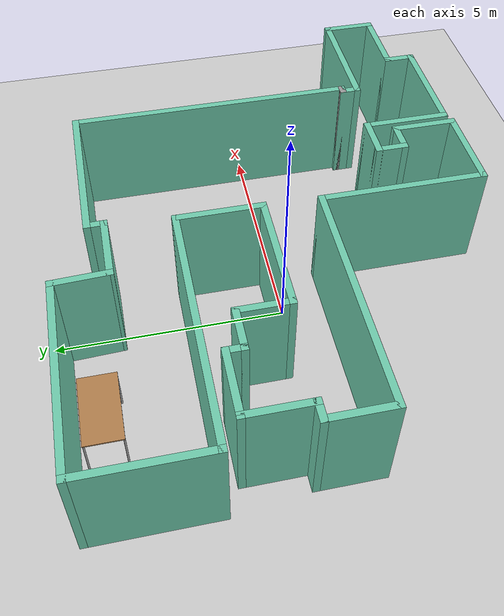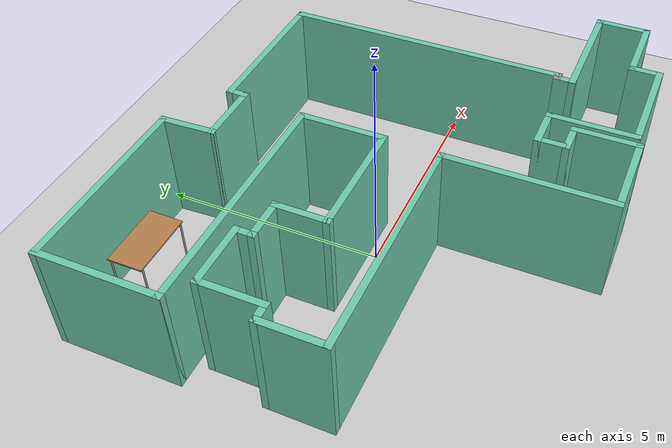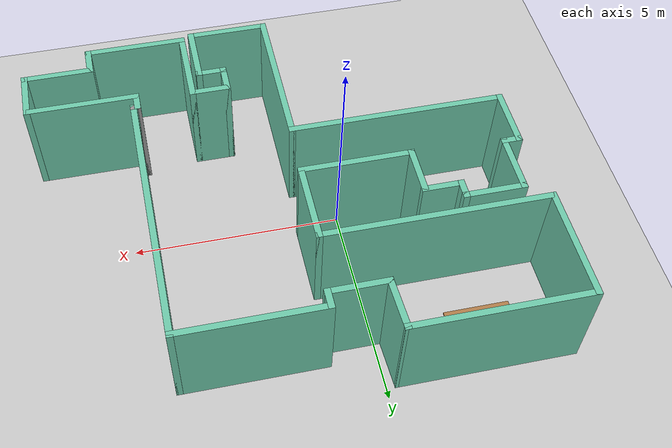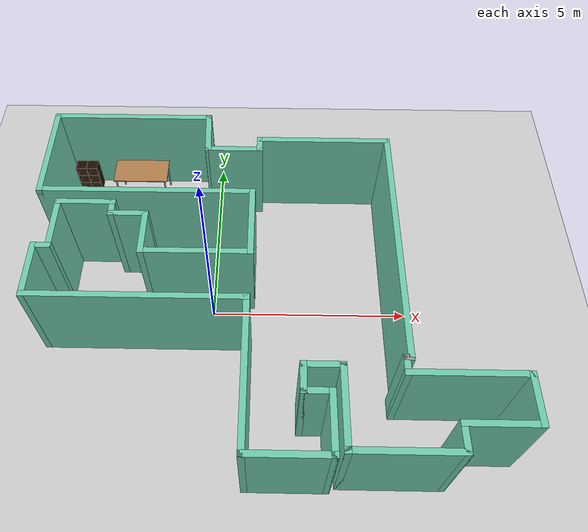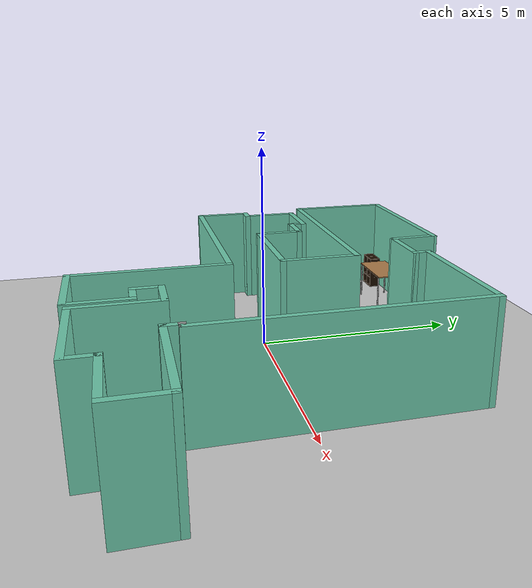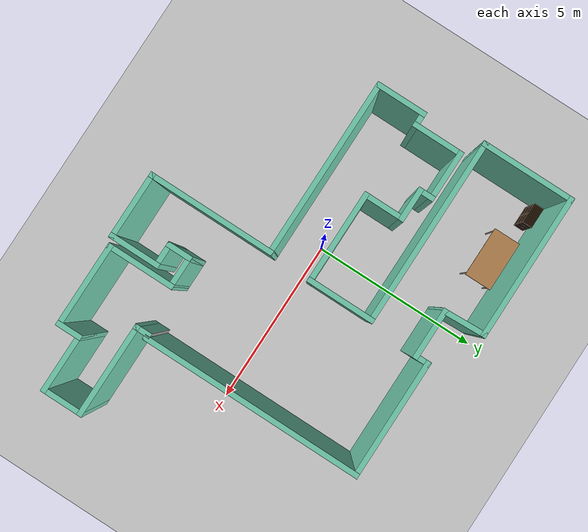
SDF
<sdf version="1.7">
 <world name="default">
  <light name="sun" type="directional">
   <pose>0 0 10 0 -0 0</pose>
   <diffuse>0.8 0.8 0.8 1</diffuse>
   <specular>0.2 0.2 0.2 1</specular>
   <attenuation>
    <range>1000</range>
    <constant>0.9</constant>
    <linear>0.01</linear>
    <quadratic>0.001</quadratic>
   </attenuation>
   <direction>-0.5 0.1 -0.9</direction>
   <spot><inner_angle>0</inner_angle><outer_angle>0</outer_angle><falloff>0</falloff></spot>
  </light>
  <model name="ground_plane">
   <static>1</static>
   <link name="link">
    <collision name="collision">
     <geometry><plane><normal>0 0 1</normal><size>100 100</size></plane></geometry>
     <surface>
      <contact><collide_bitmask>65535</collide_bitmask></contact>
      <friction><ode><mu>100</mu><mu2>50</mu2></ode></friction>
     </surface>
    </collision>
    <visual name="visual">
     <cast_shadows>0</cast_shadows>
     <geometry><plane><normal>0 0 1</normal><size>100 100</size></plane></geometry>
     <material>
      <script><uri>file://media/materials/scripts/gazebo.material</uri><name>Gazebo/Grey</name></script>
     </material>
    </visual>
   </link>
  </model>
  <gravity>0 0 -9.8</gravity>
  <magnetic_field>6e-06 2.3e-05 -4.2e-05</magnetic_field>
  <atmosphere type="adiabatic"/>
  <physics name="default_physics" default="0" type="ode">
   <max_step_size>0.001</max_step_size>
   <real_time_factor>1</real_time_factor>
   <real_time_update_rate>1000</real_time_update_rate>
  </physics>
  <scene><ambient>0.4 0.4 0.4 1</ambient><background>0.7 0.7 0.7 1</background><shadows>1</shadows></scene>
  <audio><device>default</device></audio>
  <spherical_coordinates>
   <surface_model>EARTH_WGS84</surface_model>
   <latitude_deg>0</latitude_deg>
   <longitude_deg>0</longitude_deg>
   <elevation>0</elevation>
   <heading_deg>0</heading_deg>
  </spherical_coordinates>
  <model name="map_64">
   <pose>1.31181 0.05641 0 0 -0 0</pose>
   <link name="Wall_0">
    <collision name="Wall_0_Collision">
     <geometry><box><size>4.25 0.15 2.5</size></box></geometry>
     <pose>0 0 1.25 0 -0 0</pose>
    </collision>
    <visual name="Wall_0_Visual">
     <pose>0 0 1.25 0 -0 0</pose>
     <geometry><box><size>4.25 0.15 2.5</size></box></geometry>
     <material>
      <script><uri>file://media/materials/scripts/gazebo.material</uri><name>Gazebo/Grey</name></script>
      <ambient>0.435294 0.796078 0.67451 1</ambient>
     </material>
     <meta><layer>0</layer></meta>
    </visual>
    <pose>-3.625 4.64841 0 0 -0 3.14159</pose>
   </link>
   <link name="Wall_1">
    <collision name="Wall_1_Collision">
     <geometry><box><size>2.75 0.15 2.5</size></box></geometry>
     <pose>0 0 1.25 0 -0 0</pose>
    </collision>
    <visual name="Wall_1_Visual">
     <pose>0 0 1.25 0 -0 0</pose>
     <geometry><box><size>2.75 0.15 2.5</size></box></geometry>
     <material>
      <script><uri>file://media/materials/scripts/gazebo.material</uri><name>Gazebo/Grey</name></script>
      <ambient>0.435294 0.796078 0.67451 1</ambient>
     </material>
     <meta><layer>0</layer></meta>
    </visual>
    <pose>-5.675 3.34841 0 0 -0 -1.5708</pose>
   </link>
   <link name="Wall_10">
    <collision name="Wall_10_Collision">
     <geometry><box><size>0.5 0.15 2.5</size></box></geometry>
     <pose>0 0 1.25 0 -0 0</pose>
    </collision>
    <visual name="Wall_10_Visual">
     <pose>0 0 1.25 0 -0 0</pose>
     <geometry><box><size>0.5 0.15 2.5</size></box></geometry>
     <material>
      <script><uri>file://media/materials/scripts/gazebo.material</uri><name>Gazebo/Grey</name></script>
      <ambient>0.435294 0.796078 0.67451 1</ambient>
     </material>
     <meta><layer>0</layer></meta>
    </visual>
    <pose>-5.3 0.298406 0 0 -0 3.14159</pose>
   </link>
   <link name="Wall_11">
    <collision name="Wall_11_Collision">
     <geometry><box><size>1.5 0.15 2.5</size></box></geometry>
     <pose>0 0 1.25 0 -0 0</pose>
    </collision>
    <visual name="Wall_11_Visual">
     <pose>0 0 1.25 0 -0 0</pose>
     <geometry><box><size>1.5 0.15 2.5</size></box></geometry>
     <material>
      <script><uri>file://media/materials/scripts/gazebo.material</uri><name>Gazebo/Grey</name></script>
      <ambient>0.435294 0.796078 0.67451 1</ambient>
     </material>
     <meta><layer>0</layer></meta>
    </visual>
    <pose>-5.475 -0.376594 0 0 -0 -1.5708</pose>
   </link>
   <link name="Wall_12">
    <collision name="Wall_12_Collision">
     <geometry><box><size>5.25 0.15 2.5</size></box></geometry>
     <pose>0 0 1.25 0 -0 0</pose>
    </collision>
    <visual name="Wall_12_Visual">
     <pose>0 0 1.25 0 -0 0</pose>
     <geometry><box><size>5.25 0.15 2.5</size></box></geometry>
     <material>
      <script><uri>file://media/materials/scripts/gazebo.material</uri><name>Gazebo/Grey</name></script>
      <ambient>0.435294 0.796078 0.67451 1</ambient>
     </material>
     <meta><layer>0</layer></meta>
    </visual>
    <pose>-2.925 -1.05159 0 0 -0 0</pose>
   </link>
   <link name="Wall_13">
    <collision name="Wall_13_Collision">
     <geometry><box><size>3.75 0.15 2.5</size></box></geometry>
     <pose>0 0 1.25 0 -0 0</pose>
    </collision>
    <visual name="Wall_13_Visual">
     <pose>0 0 1.25 0 -0 0</pose>
     <geometry><box><size>3.75 0.15 2.5</size></box></geometry>
     <material>
      <script><uri>file://media/materials/scripts/gazebo.material</uri><name>Gazebo/Grey</name></script>
      <ambient>0.435294 0.796078 0.67451 1</ambient>
     </material>
     <meta><layer>0</layer></meta>
    </visual>
    <pose>-0.375 -2.85159 0 0 -0 -1.5708</pose>
   </link>
   <link name="Wall_14">
    <collision name="Wall_14_Collision">
     <geometry><box><size>2 0.15 2.5</size></box></geometry>
     <pose>0 0 1.25 0 -0 0</pose>
    </collision>
    <visual name="Wall_14_Visual">
     <pose>0 0 1.25 0 -0 0</pose>
     <geometry><box><size>2 0.15 2.5</size></box></geometry>
     <material>
      <script><uri>file://media/materials/scripts/gazebo.material</uri><name>Gazebo/Grey</name></script>
      <ambient>0.435294 0.796078 0.67451 1</ambient>
     </material>
     <meta><layer>0</layer></meta>
    </visual>
    <pose>0.55 -4.65159 0 0 -0 0</pose>
   </link>
   <link name="Wall_15">
    <collision name="Wall_15_Collision">
     <geometry><box><size>1.5 0.15 2.5</size></box></geometry>
     <pose>0 0 1.25 0 -0 0</pose>
    </collision>
    <visual name="Wall_15_Visual">
     <pose>0 0 1.25 0 -0 0</pose>
     <geometry><box><size>1.5 0.15 2.5</size></box></geometry>
     <material>
      <script><uri>file://media/materials/scripts/gazebo.material</uri><name>Gazebo/Grey</name></script>
      <ambient>0.435294 0.796078 0.67451 1</ambient>
     </material>
     <meta><layer>0</layer></meta>
    </visual>
    <pose>1.475 -3.97659 0 0 -0 1.5708</pose>
   </link>
   <link name="Wall_16">
    <collision name="Wall_16_Collision">
     <geometry><box><size>0.75 0.15 2.5</size></box></geometry>
     <pose>0 0 1.25 0 -0 0</pose>
    </collision>
    <visual name="Wall_16_Visual">
     <pose>0 0 1.25 0 -0 0</pose>
     <geometry><box><size>0.75 0.15 2.5</size></box></geometry>
     <material>
      <script><uri>file://media/materials/scripts/gazebo.material</uri><name>Gazebo/Grey</name></script>
      <ambient>0.435294 0.796078 0.67451 1</ambient>
     </material>
     <meta><layer>0</layer></meta>
    </visual>
    <pose>1.175 -3.30159 0 0 -0 3.14159</pose>
   </link>
   <link name="Wall_17">
    <collision name="Wall_17_Collision">
     <geometry><box><size>0.75 0.15 2.5</size></box></geometry>
     <pose>0 0 1.25 0 -0 0</pose>
    </collision>
    <visual name="Wall_17_Visual">
     <pose>0 0 1.25 0 -0 0</pose>
     <geometry><box><size>0.75 0.15 2.5</size></box></geometry>
     <material>
      <script><uri>file://media/materials/scripts/gazebo.material</uri><name>Gazebo/Grey</name></script>
      <ambient>0.435294 0.796078 0.67451 1</ambient>
     </material>
     <meta><layer>0</layer></meta>
    </visual>
    <pose>0.875 -3.00159 0 0 -0 1.5708</pose>
   </link>
   <link name="Wall_18">
    <collision name="Wall_18_Collision">
     <geometry><box><size>1 0.15 2.5</size></box></geometry>
     <pose>0 0 1.25 0 -0 0</pose>
    </collision>
    <visual name="Wall_18_Visual">
     <pose>0 0 1.25 0 -0 0</pose>
     <geometry><box><size>1 0.15 2.5</size></box></geometry>
     <material>
      <script><uri>file://media/materials/scripts/gazebo.material</uri><name>Gazebo/Grey</name></script>
      <ambient>0.435294 0.796078 0.67451 1</ambient>
     </material>
     <meta><layer>0</layer></meta>
    </visual>
    <pose>1.3 -2.70159 0 0 -0 0</pose>
   </link>
   <link name="Wall_19">
    <collision name="Wall_19_Collision">
     <geometry><box><size>2 0.15 2.5</size></box></geometry>
     <pose>0 0 1.25 0 -0 0</pose>
    </collision>
    <visual name="Wall_19_Visual">
     <pose>0 0 1.25 0 -0 0</pose>
     <geometry><box><size>2 0.15 2.5</size></box></geometry>
     <material>
      <script><uri>file://media/materials/scripts/gazebo.material</uri><name>Gazebo/Grey</name></script>
      <ambient>0.435294 0.796078 0.67451 1</ambient>
     </material>
     <meta><layer>0</layer></meta>
    </visual>
    <pose>1.725 -3.62659 0 0 -0 -1.5708</pose>
   </link>
   <link name="Wall_2">
    <collision name="Wall_2_Collision">
     <geometry><box><size>5.5 0.15 2.5</size></box></geometry>
     <pose>0 0 1.25 0 -0 0</pose>
    </collision>
    <visual name="Wall_2_Visual">
     <pose>0 0 1.25 0 -0 0</pose>
     <geometry><box><size>5.5 0.15 2.5</size></box></geometry>
     <material>
      <script><uri>file://media/materials/scripts/gazebo.material</uri><name>Gazebo/Grey</name></script>
      <ambient>0.435294 0.796078 0.67451 1</ambient>
     </material>
     <meta><layer>0</layer></meta>
    </visual>
    <pose>-3 2.04841 0 0 -0 0</pose>
   </link>
   <link name="Wall_20">
    <collision name="Wall_20_Collision">
     <geometry><box><size>2.5 0.15 2.5</size></box></geometry>
     <pose>0 0 1.25 0 -0 0</pose>
    </collision>
    <visual name="Wall_20_Visual">
     <pose>0 0 1.25 0 -0 0</pose>
     <geometry><box><size>2.5 0.15 2.5</size></box></geometry>
     <material>
      <script><uri>file://media/materials/scripts/gazebo.material</uri><name>Gazebo/Grey</name></script>
      <ambient>0.435294 0.796078 0.67451 1</ambient>
     </material>
     <meta><layer>0</layer></meta>
    </visual>
    <pose>2.9 -4.55159 0 0 -0 0</pose>
   </link>
   <link name="Wall_21">
    <collision name="Wall_21_Collision">
     <geometry><box><size>0.75 0.15 2.5</size></box></geometry>
     <pose>0 0 1.25 0 -0 0</pose>
    </collision>
    <visual name="Wall_21_Visual">
     <pose>0 0 1.25 0 -0 0</pose>
     <geometry><box><size>0.75 0.15 2.5</size></box></geometry>
     <material>
      <script><uri>file://media/materials/scripts/gazebo.material</uri><name>Gazebo/Grey</name></script>
      <ambient>0.435294 0.796078 0.67451 1</ambient>
     </material>
     <meta><layer>0</layer></meta>
    </visual>
    <pose>4.075 -4.25159 0 0 -0 1.5708</pose>
   </link>
   <link name="Wall_22">
    <collision name="Wall_22_Collision">
     <geometry><box><size>1.75 0.15 2.5</size></box></geometry>
     <pose>0 0 1.25 0 -0 0</pose>
    </collision>
    <visual name="Wall_22_Visual">
     <pose>0 0 1.25 0 -0 0</pose>
     <geometry><box><size>1.75 0.15 2.5</size></box></geometry>
     <material>
      <script><uri>file://media/materials/scripts/gazebo.material</uri><name>Gazebo/Grey</name></script>
      <ambient>0.435294 0.796078 0.67451 1</ambient>
     </material>
     <meta><layer>0</layer></meta>
    </visual>
    <pose>4.875 -3.95159 0 0 -0 0</pose>
   </link>
   <link name="Wall_25">
    <collision name="Wall_25_Collision">
     <geometry><box><size>1.25 0.15 2.5</size></box></geometry>
     <pose>0 0 1.25 0 -0 0</pose>
    </collision>
    <visual name="Wall_25_Visual">
     <pose>0 0 1.25 0 -0 0</pose>
     <geometry><box><size>1.25 0.15 2.5</size></box></geometry>
     <material>
      <script><uri>file://media/materials/scripts/gazebo.material</uri><name>Gazebo/Grey</name></script>
      <ambient>0.435294 0.796078 0.67451 1</ambient>
     </material>
     <meta><layer>0</layer></meta>
    </visual>
    <pose>5.675 -3.40159 0 0 -0 1.5708</pose>
   </link>
   <link name="Wall_26">
    <collision name="Wall_26_Collision">
     <geometry><box><size>2.75 0.15 2.5</size></box></geometry>
     <pose>0 0 1.25 0 -0 0</pose>
    </collision>
    <visual name="Wall_26_Visual">
     <pose>0 0 1.25 0 -0 0</pose>
     <geometry><box><size>2.75 0.15 2.5</size></box></geometry>
     <material>
      <script><uri>file://media/materials/scripts/gazebo.material</uri><name>Gazebo/Grey</name></script>
      <ambient>0.435294 0.796078 0.67451 1</ambient>
     </material>
     <meta><layer>0</layer></meta>
    </visual>
    <pose>4.375 -2.85159 0 0 -0 3.14159</pose>
   </link>
   <link name="Wall_29">
    <collision name="Wall_29_Collision">
     <geometry><box><size>0.5 0.15 2.5</size></box></geometry>
     <pose>0 0 1.25 0 -0 0</pose>
    </collision>
    <visual name="Wall_29_Visual">
     <pose>0 0 1.25 0 -0 0</pose>
     <geometry><box><size>0.5 0.15 2.5</size></box></geometry>
     <material>
      <script><uri>file://media/materials/scripts/gazebo.material</uri><name>Gazebo/Grey</name></script>
      <ambient>0.435294 0.796078 0.67451 1</ambient>
     </material>
     <meta><layer>0</layer></meta>
    </visual>
    <pose>3.075 -2.67659 0 0 -0 1.5708</pose>
   </link>
   <link name="Wall_3">
    <collision name="Wall_3_Collision">
     <geometry><box><size>2 0.15 2.5</size></box></geometry>
     <pose>0 0 1.25 0 -0 0</pose>
    </collision>
    <visual name="Wall_3_Visual">
     <pose>0 0 1.25 0 -0 0</pose>
     <geometry><box><size>2 0.15 2.5</size></box></geometry>
     <material>
      <script><uri>file://media/materials/scripts/gazebo.material</uri><name>Gazebo/Grey</name></script>
      <ambient>0.435294 0.796078 0.67451 1</ambient>
     </material>
     <meta><layer>0</layer></meta>
    </visual>
    <pose>-0.325 1.12341 0 0 -0 -1.5708</pose>
   </link>
   <link name="Wall_30">
    <collision name="Wall_30_Collision">
     <geometry><box><size>0.25 0.15 2.5</size></box></geometry>
     <pose>0 0 1.25 0 -0 0</pose>
    </collision>
    <visual name="Wall_30_Visual">
     <pose>0 0 1.25 0 -0 0</pose>
     <geometry><box><size>0.25 0.15 2.5</size></box></geometry>
     <material>
      <script><uri>file://media/materials/scripts/gazebo.material</uri><name>Gazebo/Grey</name></script>
      <ambient>1 1 1 1</ambient>
     </material>
     <meta><layer>0</layer></meta>
    </visual>
    <pose>3.125 -2.50159 0 0 -0 0</pose>
   </link>
   <link name="Wall_31">
    <collision name="Wall_31_Collision">
     <geometry><box><size>6.5 0.15 2.5</size></box></geometry>
     <pose>0 0 1.25 0 -0 0</pose>
    </collision>
    <visual name="Wall_31_Visual">
     <pose>0 0 1.25 0 -0 0</pose>
     <geometry><box><size>6.5 0.15 2.5</size></box></geometry>
     <material>
      <script><uri>file://media/materials/scripts/gazebo.material</uri><name>Gazebo/Grey</name></script>
      <ambient>0.435294 0.796078 0.67451 1</ambient>
     </material>
     <meta><layer>0</layer></meta>
    </visual>
    <pose>3.175 0.673406 0 0 -0 1.5708</pose>
   </link>
   <link name="Wall_32">
    <collision name="Wall_32_Collision">
     <geometry><box><size>3.5 0.15 2.5</size></box></geometry>
     <pose>0 0 1.25 0 -0 0</pose>
    </collision>
    <visual name="Wall_32_Visual">
     <pose>0 0 1.25 0 -0 0</pose>
     <geometry><box><size>3.5 0.15 2.5</size></box></geometry>
     <material>
      <script><uri>file://media/materials/scripts/gazebo.material</uri><name>Gazebo/Grey</name></script>
      <ambient>0.435294 0.796078 0.67451 1</ambient>
     </material>
     <meta><layer>0</layer></meta>
    </visual>
    <pose>1.5 3.84841 0 0 -0 3.14159</pose>
   </link>
   <link name="Wall_37">
    <collision name="Wall_37_Collision">
     <geometry><box><size>0.5 0.15 2.5</size></box></geometry>
     <pose>0 0 1.25 0 -0 0</pose>
    </collision>
    <visual name="Wall_37_Visual">
     <pose>0 0 1.25 0 -0 0</pose>
     <geometry><box><size>0.5 0.15 2.5</size></box></geometry>
     <material>
      <script><uri>file://media/materials/scripts/gazebo.material</uri><name>Gazebo/Grey</name></script>
      <ambient>0.435294 0.796078 0.67451 1</ambient>
     </material>
     <meta><layer>0</layer></meta>
    </visual>
    <pose>-0.175 3.67341 0 0 -0 -1.5708</pose>
   </link>
   <link name="Wall_38">
    <collision name="Wall_38_Collision">
     <geometry><box><size>1.5 0.15 2.5</size></box></geometry>
     <pose>0 0 1.25 0 -0 0</pose>
    </collision>
    <visual name="Wall_38_Visual">
     <pose>0 0 1.25 0 -0 0</pose>
     <geometry><box><size>1.5 0.15 2.5</size></box></geometry>
     <material>
      <script><uri>file://media/materials/scripts/gazebo.material</uri><name>Gazebo/Grey</name></script>
      <ambient>0.435294 0.796078 0.67451 1</ambient>
     </material>
     <meta><layer>0</layer></meta>
    </visual>
    <pose>-0.85 3.49841 0 0 -0 3.14159</pose>
   </link>
   <link name="Wall_39">
    <collision name="Wall_39_Collision">
     <geometry><box><size>1.30109 0.15 2.5</size></box></geometry>
     <pose>0 0 1.25 0 -0 0</pose>
    </collision>
    <visual name="Wall_39_Visual">
     <pose>0 0 1.25 0 -0 0</pose>
     <geometry><box><size>1.30109 0.15 2.5</size></box></geometry>
     <material>
      <script><uri>file://media/materials/scripts/gazebo.material</uri><name>Gazebo/Grey</name></script>
      <ambient>0.435294 0.796078 0.67451 1</ambient>
     </material>
     <meta><layer>0</layer></meta>
    </visual>
    <pose>-1.55 4.07341 0 0 -0 1.61425</pose>
   </link>
   <link name="Wall_4">
    <collision name="Wall_4_Collision">
     <geometry><box><size>2.75 0.15 2.5</size></box></geometry>
     <pose>0 0 1.25 0 -0 0</pose>
    </collision>
    <visual name="Wall_4_Visual">
     <pose>0 0 1.25 0 -0 0</pose>
     <geometry><box><size>2.75 0.15 2.5</size></box></geometry>
     <material>
      <script><uri>file://media/materials/scripts/gazebo.material</uri><name>Gazebo/Grey</name></script>
      <ambient>0.435294 0.796078 0.67451 1</ambient>
     </material>
     <meta><layer>0</layer></meta>
    </visual>
    <pose>-1.625 0.198406 0 0 -0 3.14159</pose>
   </link>
   <link name="Wall_5">
    <collision name="Wall_5_Collision">
     <geometry><box><size>1.25 0.15 2.5</size></box></geometry>
     <pose>0 0 1.25 0 -0 0</pose>
    </collision>
    <visual name="Wall_5_Visual">
     <pose>0 0 1.25 0 -0 0</pose>
     <geometry><box><size>1.25 0.15 2.5</size></box></geometry>
     <material>
      <script><uri>file://media/materials/scripts/gazebo.material</uri><name>Gazebo/Grey</name></script>
      <ambient>0.435294 0.796078 0.67451 1</ambient>
     </material>
     <meta><layer>0</layer></meta>
    </visual>
    <pose>-2.925 0.748406 0 0 -0 1.5708</pose>
   </link>
   <link name="Wall_6">
    <collision name="Wall_6_Collision">
     <geometry><box><size>1 0.15 2.5</size></box></geometry>
     <pose>0 0 1.25 0 -0 0</pose>
    </collision>
    <visual name="Wall_6_Visual">
     <pose>0 0 1.25 0 -0 0</pose>
     <geometry><box><size>1 0.15 2.5</size></box></geometry>
     <material>
      <script><uri>file://media/materials/scripts/gazebo.material</uri><name>Gazebo/Grey</name></script>
      <ambient>0.435294 0.796078 0.67451 1</ambient>
     </material>
     <meta><layer>0</layer></meta>
    </visual>
    <pose>-3.35 1.29841 0 0 -0 3.14159</pose>
   </link>
   <link name="Wall_7">
    <collision name="Wall_7_Collision">
     <geometry><box><size>0.5 0.15 2.5</size></box></geometry>
     <pose>0 0 1.25 0 -0 0</pose>
    </collision>
    <visual name="Wall_7_Visual">
     <pose>0 0 1.25 0 -0 0</pose>
     <geometry><box><size>0.5 0.15 2.5</size></box></geometry>
     <material>
      <script><uri>file://media/materials/scripts/gazebo.material</uri><name>Gazebo/Grey</name></script>
      <ambient>0.435294 0.796078 0.67451 1</ambient>
     </material>
     <meta><layer>0</layer></meta>
    </visual>
    <pose>-3.775 1.47341 0 0 -0 1.5708</pose>
   </link>
   <link name="Wall_8">
    <collision name="Wall_8_Collision">
     <geometry><box><size>1.5 0.15 2.5</size></box></geometry>
     <pose>0 0 1.25 0 -0 0</pose>
    </collision>
    <visual name="Wall_8_Visual">
     <pose>0 0 1.25 0 -0 0</pose>
     <geometry><box><size>1.5 0.15 2.5</size></box></geometry>
     <material>
      <script><uri>file://media/materials/scripts/gazebo.material</uri><name>Gazebo/Grey</name></script>
      <ambient>0.435294 0.796078 0.67451 1</ambient>
     </material>
     <meta><layer>0</layer></meta>
    </visual>
    <pose>-4.45 1.64841 0 0 -0 3.14159</pose>
   </link>
   <link name="Wall_9">
    <collision name="Wall_9_Collision">
     <geometry><box><size>1.5 0.15 2.5</size></box></geometry>
     <pose>0 0 1.25 0 -0 0</pose>
    </collision>
    <visual name="Wall_9_Visual">
     <pose>0 0 1.25 0 -0 0</pose>
     <geometry><box><size>1.5 0.15 2.5</size></box></geometry>
     <material>
      <script><uri>file://media/materials/scripts/gazebo.material</uri><name>Gazebo/Grey</name></script>
      <ambient>0.435294 0.796078 0.67451 1</ambient>
     </material>
     <meta><layer>0</layer></meta>
    </visual>
    <pose>-5.125 0.973406 0 0 -0 -1.5708</pose>
   </link>
   <static>1</static>
  </model>
  <model name="6_Cube_StorageE">
   <link name="Wall_0">
    <pose>0 0 0.01 0 -0 0</pose>
    <inertial>
     <mass>1.6201</mass>
     <inertia><ixx>0.0119</ixx><iyy>0.0631</iyy><izz>0.0513</izz><ixy>0</ixy><ixz>0</ixz><iyz>0</iyz></inertia>
    </inertial>
    <collision name="Wall_0_Collision"><geometry><box><size>0.616 0.296 0.02</size></box></geometry></collision>
    <visual name="Wall_0_Visual">
     <geometry><box><size>0.616 0.296 0.02</size></box></geometry>
     <material>
      <script><uri>file://media/materials/scripts/gazebo.material</uri><name>Gazebo/Grey</name></script>
      <ambient>0.105882 0.0509804 0 1</ambient>
     </material>
    </visual>
   </link>
   <joint name="0_2" type="fixed">
    <pose>-0.308 0 0 0 -0 0</pose>
    <parent>Wall_2</parent>
    <child>Wall_0</child>
    <axis><xyz>1 0 0</xyz><limit><lower>-1e+16</lower><upper>1e+16</upper></limit></axis>
   </joint>
   <joint name="0_12" type="fixed">
    <parent>Wall_12</parent>
    <child>Wall_0</child>
    <axis><xyz>0 0 1</xyz><limit><lower>-1e+16</lower><upper>1e+16</upper></limit></axis>
   </joint>
   <joint name="0_4" type="fixed">
    <pose>0.308 0 0 0 -0 0</pose>
    <parent>Wall_4</parent>
    <child>Wall_0</child>
    <axis><xyz>1 0 0</xyz><limit><lower>-1e+16</lower><upper>1e+16</upper></limit></axis>
   </joint>
   <link name="Wall_10">
    <pose>0 0 0.61 0 -0 0</pose>
    <inertial>
     <mass>1.6201</mass>
     <inertia><ixx>0.0119</ixx><iyy>0.0631</iyy><izz>0.0513</izz><ixy>0</ixy><ixz>0</ixz><iyz>0</iyz></inertia>
    </inertial>
    <collision name="Wall_10_Collision"><geometry><box><size>0.616 0.296 0.02</size></box></geometry></collision>
    <visual name="Wall_10_Visual">
     <geometry><box><size>0.616 0.296 0.02</size></box></geometry>
     <material>
      <script><uri>file://media/materials/scripts/gazebo.material</uri><name>Gazebo/Grey</name></script>
      <ambient>0.105882 0.0509804 0 1</ambient>
     </material>
    </visual>
   </link>
   <joint name="10_2" type="fixed">
    <pose>-0.308 0 0 0 -0 0</pose>
    <parent>Wall_2</parent>
    <child>Wall_10</child>
    <axis><xyz>1 0 0</xyz><limit><lower>-1e+16</lower><upper>1e+16</upper></limit></axis>
   </joint>
   <joint name="10_12" type="fixed">
    <parent>Wall_12</parent>
    <child>Wall_10</child>
    <axis><xyz>0 0 1</xyz><limit><lower>-1e+16</lower><upper>1e+16</upper></limit></axis>
   </joint>
   <joint name="10_4" type="fixed">
    <pose>0.308 0 0 0 -0 0</pose>
    <parent>Wall_4</parent>
    <child>Wall_10</child>
    <axis><xyz>1 0 0</xyz><limit><lower>-1e+16</lower><upper>1e+16</upper></limit></axis>
   </joint>
   <link name="Wall_12">
    <pose>0 0 0.4575 0 -0 0</pose>
    <inertial>
     <mass>2.4065</mass>
     <inertia><ixx>0.0177</ixx><iyy>0.1855</iyy><izz>0.168</izz><ixy>0</ixy><ixz>0</ixz><iyz>0</iyz></inertia>
    </inertial>
    <collision name="Wall_12_Collision"><geometry><box><size>0.02 0.296 0.915</size></box></geometry></collision>
    <visual name="Wall_12_Visual">
     <geometry><box><size>0.02 0.296 0.915</size></box></geometry>
     <material>
      <script><uri>file://media/materials/scripts/gazebo.material</uri><name>Gazebo/Grey</name></script>
      <ambient>0.105882 0.0509804 0 1</ambient>
     </material>
    </visual>
   </link>
   <link name="Wall_2">
    <pose>-0.298 0 0.4575 0 -0 0</pose>
    <inertial>
     <mass>2.4065</mass>
     <inertia><ixx>0.0177</ixx><iyy>0.1855</iyy><izz>0.168</izz><ixy>0</ixy><ixz>0</ixz><iyz>0</iyz></inertia>
    </inertial>
    <collision name="Wall_2_Collision"><geometry><box><size>0.02 0.296 0.915</size></box></geometry></collision>
    <visual name="Wall_2_Visual">
     <geometry><box><size>0.02 0.296 0.915</size></box></geometry>
     <material>
      <script><uri>file://media/materials/scripts/gazebo.material</uri><name>Gazebo/Grey</name></script>
      <ambient>0.105882 0.0509804 0 1</ambient>
     </material>
    </visual>
   </link>
   <link name="Wall_4">
    <pose>0.298 0 0.4575 0 -0 0</pose>
    <inertial>
     <mass>2.4065</mass>
     <inertia><ixx>0.0177</ixx><iyy>0.1855</iyy><izz>0.168</izz><ixy>0</ixy><ixz>0</ixz><iyz>0</iyz></inertia>
    </inertial>
    <collision name="Wall_4_Collision"><geometry><box><size>0.02 0.296 0.915</size></box></geometry></collision>
    <visual name="Wall_4_Visual">
     <geometry><box><size>0.02 0.296 0.915</size></box></geometry>
     <material>
      <script><uri>file://media/materials/scripts/gazebo.material</uri><name>Gazebo/Grey</name></script>
      <ambient>0.105882 0.0509804 0 1</ambient>
     </material>
    </visual>
   </link>
   <link name="Wall_6">
    <pose>0 0 0.905 0 -0 0</pose>
    <inertial>
     <mass>1.6201</mass>
     <inertia><ixx>0.0119</ixx><iyy>0.0631</iyy><izz>0.0513</izz><ixy>0</ixy><ixz>0</ixz><iyz>0</iyz></inertia>
    </inertial>
    <collision name="Wall_6_Collision"><geometry><box><size>0.616 0.296 0.02</size></box></geometry></collision>
    <visual name="Wall_6_Visual">
     <geometry><box><size>0.616 0.296 0.02</size></box></geometry>
     <material>
      <script><uri>file://media/materials/scripts/gazebo.material</uri><name>Gazebo/Grey</name></script>
      <ambient>0.105882 0.0509804 0 1</ambient>
     </material>
    </visual>
   </link>
   <joint name="6_2" type="fixed">
    <pose>-0.308 0 0 0 -0 0</pose>
    <parent>Wall_2</parent>
    <child>Wall_6</child>
    <axis><xyz>2 0 0</xyz><limit><lower>-1e+16</lower><upper>1e+16</upper></limit></axis>
   </joint>
   <joint name="6_12" type="fixed">
    <parent>Wall_12</parent>
    <child>Wall_6</child>
    <axis><xyz>0 0 1</xyz><limit><lower>-1e+16</lower><upper>1e+16</upper></limit></axis>
   </joint>
   <joint name="6_4" type="fixed">
    <pose>0.308 0 0 0 -0 0</pose>
    <parent>Wall_4</parent>
    <child>Wall_6</child>
    <axis><xyz>1 0 0</xyz><limit><lower>-1e+16</lower><upper>1e+16</upper></limit></axis>
   </joint>
   <link name="Wall_8">
    <pose>0 0 0.305 0 -0 0</pose>
    <inertial>
     <mass>1.6201</mass>
     <inertia><ixx>0.0119</ixx><iyy>0.0631</iyy><izz>0.0513</izz><ixy>0</ixy><ixz>0</ixz><iyz>0</iyz></inertia>
    </inertial>
    <collision name="Wall_8_Collision"><geometry><box><size>0.616 0.296 0.02</size></box></geometry></collision>
    <visual name="Wall_8_Visual">
     <geometry><box><size>0.616 0.296 0.02</size></box></geometry>
     <material>
      <script><uri>file://media/materials/scripts/gazebo.material</uri><name>Gazebo/Grey</name></script>
      <ambient>0.105882 0.0509804 0 1</ambient>
     </material>
    </visual>
   </link>
   <joint name="8_2" type="fixed">
    <pose>-0.308 0 0 0 -0 0</pose>
    <parent>Wall_2</parent>
    <child>Wall_8</child>
    <axis><xyz>1 0 0</xyz><limit><lower>-1e+16</lower><upper>1e+16</upper></limit></axis>
   </joint>
   <joint name="8_12" type="fixed">
    <parent>Wall_12</parent>
    <child>Wall_8</child>
    <axis><xyz>0 0 1</xyz><limit><lower>-1e+16</lower><upper>1e+16</upper></limit></axis>
   </joint>
   <joint name="8_4" type="fixed">
    <pose>0.308 0 0 0 -0 0</pose>
    <parent>Wall_4</parent>
    <child>Wall_8</child>
    <axis><xyz>1 0 0</xyz><limit><lower>-1e+16</lower><upper>1e+16</upper></limit></axis>
   </joint>
   <static>1</static>
   <pose>-3.8902 4.40938 0 0 -0 0</pose>
  </model>
  <model name="table">
   <static>1</static>
   <link name="link">
    <collision name="surface">
     <pose>0 0 1 0 -0 0</pose>
     <geometry><box><size>1.5 0.8 0.03</size></box></geometry>
     <surface><friction><ode><mu>0.6</mu><mu2>0.6</mu2></ode></friction></surface>
    </collision>
    <visual name="visual1">
     <pose>0 0 1 0 -0 0</pose>
     <geometry><box><size>1.5 0.8 0.03</size></box></geometry>
     <material>
      <script><uri>file://media/materials/scripts/gazebo.material</uri><name>Gazebo/Wood</name></script>
     </material>
    </visual>
    <collision name="front_left_leg">
     <pose>0.68 0.38 0.5 0 -0 0</pose>
     <geometry><cylinder><radius>0.02</radius><length>1</length></cylinder></geometry>
    </collision>
    <visual name="front_left_leg">
     <pose>0.68 0.38 0.5 0 -0 0</pose>
     <geometry><cylinder><radius>0.02</radius><length>1</length></cylinder></geometry>
     <material>
      <script><uri>file://media/materials/scripts/gazebo.material</uri><name>Gazebo/Grey</name></script>
     </material>
    </visual>
    <collision name="front_right_leg">
     <pose>0.68 -0.38 0.5 0 -0 0</pose>
     <geometry><cylinder><radius>0.02</radius><length>1</length></cylinder></geometry>
    </collision>
    <visual name="front_right_leg">
     <pose>0.68 -0.38 0.5 0 -0 0</pose>
     <geometry><cylinder><radius>0.02</radius><length>1</length></cylinder></geometry>
     <material>
      <script><uri>file://media/materials/scripts/gazebo.material</uri><name>Gazebo/Grey</name></script>
     </material>
    </visual>
    <collision name="back_right_leg">
     <pose>-0.68 -0.38 0.5 0 -0 0</pose>
     <geometry><cylinder><radius>0.02</radius><length>1</length></cylinder></geometry>
    </collision>
    <visual name="back_right_leg">
     <pose>-0.68 -0.38 0.5 0 -0 0</pose>
     <geometry><cylinder><radius>0.02</radius><length>1</length></cylinder></geometry>
     <material>
      <script><uri>file://media/materials/scripts/gazebo.material</uri><name>Gazebo/Grey</name></script>
     </material>
    </visual>
    <collision name="back_left_leg">
     <pose>-0.68 0.38 0.5 0 -0 0</pose>
     <geometry><cylinder><radius>0.02</radius><length>1</length></cylinder></geometry>
    </collision>
    <visual name="back_left_leg">
     <pose>-0.68 0.38 0.5 0 -0 0</pose>
     <geometry><cylinder><radius>0.02</radius><length>1</length></cylinder></geometry>
     <material>
      <script><uri>file://media/materials/scripts/gazebo.material</uri><name>Gazebo/Grey</name></script>
     </material>
    </visual>
   </link>
   <pose>-2.24848 4.10473 0 0 -0 0</pose>
  </model>
 </world>
</sdf>
